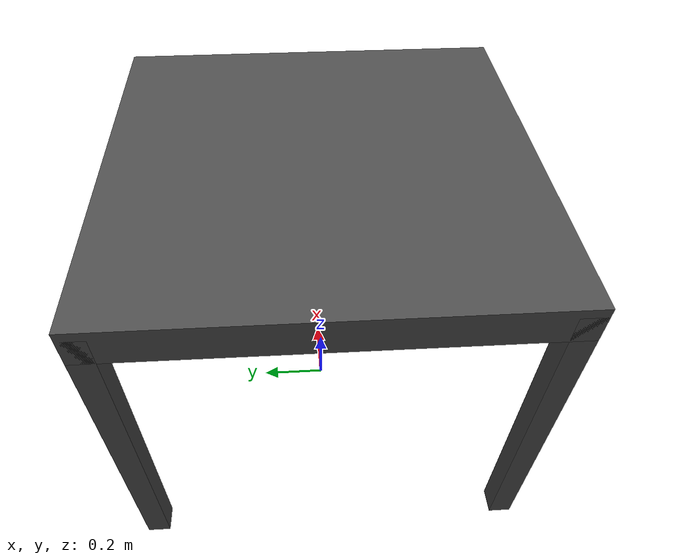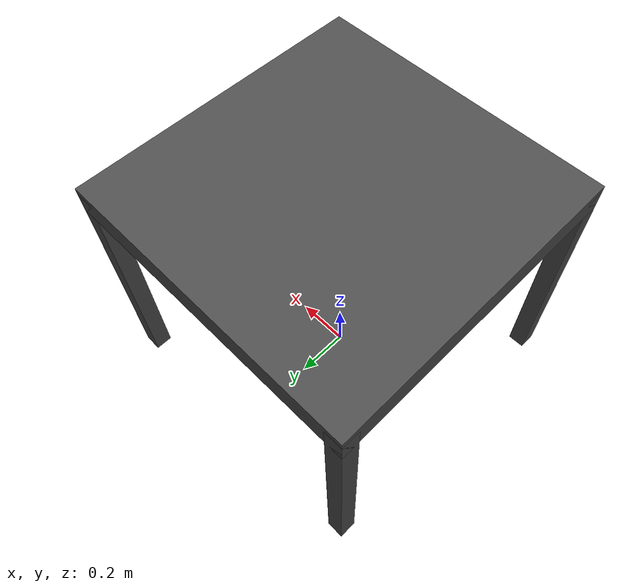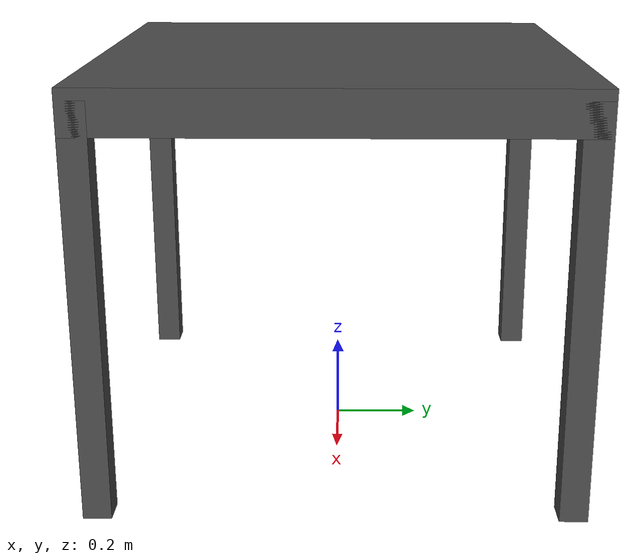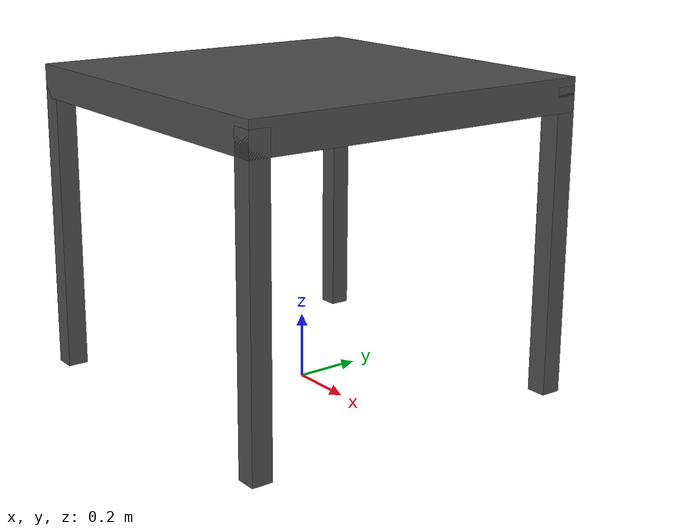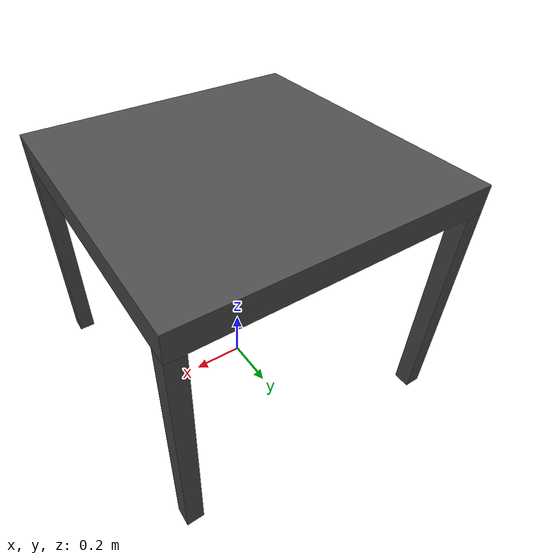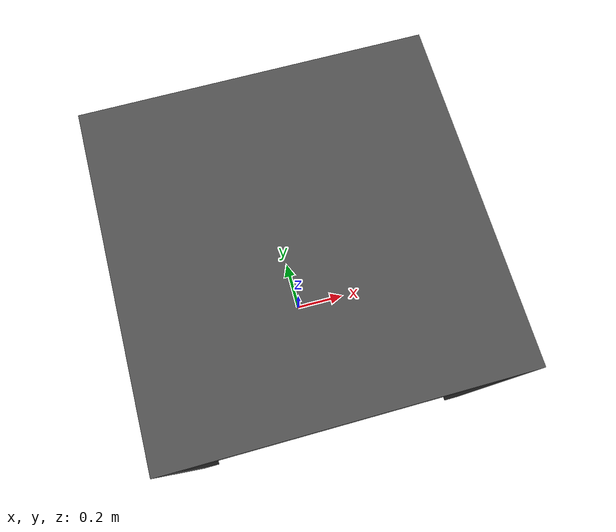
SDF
<?xml version="1.0"?>
<sdf version="1.6">
  <model name="rwc2016/ikea_table_black">
    <link name="1_link">
      <collision name="1_col">
        <geometry>
          <box>
            <size>1.103 1.103 0.1</size>
          </box>
        </geometry>
      </collision>
      <visual name="1_vis">
        <geometry>
          <box>
            <size>1.103 1.103 0.1</size>
          </box>
        </geometry>
        <material>
          <ambient>0.3 0.3 0.3 1</ambient>
        </material>
      </visual>
      <pose>0 0 0.9 0 0 0</pose>
    </link>
    <link name="2_link">
      <collision name="2_col">
        <geometry>
          <box>
            <size>0.063 0.063 0.925</size>
          </box>
        </geometry>
      </collision>
      <visual name="2_vis">
        <geometry>
          <box>
            <size>0.063 0.063 0.925</size>
          </box>
        </geometry>
        <material>
          <ambient>0.3 0.3 0.3 1</ambient>
        </material>
      </visual>
      <pose>-0.52 -0.52 0.4625 0 0 0</pose>
    </link>
    <link name="3_link">
      <collision name="3_col">
        <geometry>
          <box>
            <size>0.063 0.063 0.925</size>
          </box>
        </geometry>
      </collision>
      <visual name="3_vis">
        <geometry>
          <box>
            <size>0.063 0.063 0.925</size>
          </box>
        </geometry>
        <material>
          <ambient>0.3 0.3 0.3 1</ambient>
        </material>
      </visual>
      <pose>0.52 -0.52 0.4625 0 0 0</pose>
    </link>
    <link name="4_link">
      <collision name="4_col">
        <geometry>
          <box>
            <size>0.063 0.063 0.925</size>
          </box>
        </geometry>
      </collision>
      <visual name="4_vis">
        <geometry>
          <box>
            <size>0.063 0.063 0.925</size>
          </box>
        </geometry>
        <material>
          <ambient>0.3 0.3 0.3 1</ambient>
        </material>
      </visual>
      <pose>-0.52 0.52 0.4625 0 0 0</pose>
    </link>
    <link name="5_link">
      <collision name="5_col">
        <geometry>
          <box>
            <size>0.063 0.063 0.925</size>
          </box>
        </geometry>
      </collision>
      <visual name="5_vis">
        <geometry>
          <box>
            <size>0.063 0.063 0.925</size>
          </box>
        </geometry>
        <material>
          <ambient>0.3 0.3 0.3 1</ambient>
        </material>
      </visual>
      <pose>0.52 0.52 0.4625 0 0 0</pose>
    </link>
    <link name="on_top_of">
      <virtual_volume name="on_top_of_vv">
        <geometry>
          <box>
            <size>1.043 1.043 0.25</size>
          </box>
        </geometry>
        <pose>0.0 0.0 1.095 0 0 0</pose>
      </virtual_volume>
    </link>
    <link name="in_front_of">
      <virtual_volume name="in_front_of_vv">
        <geometry>
          <box>
            <size>0.2 0.903 0.01</size>
          </box>
        </geometry>
        <pose>1.0515 0.0 0.005 0 0 0</pose>
      </virtual_volume>
    </link>
    <static>true</static>
  </model>
</sdf>
